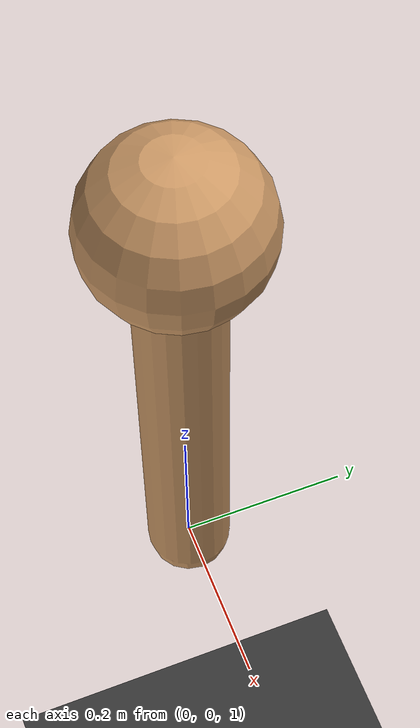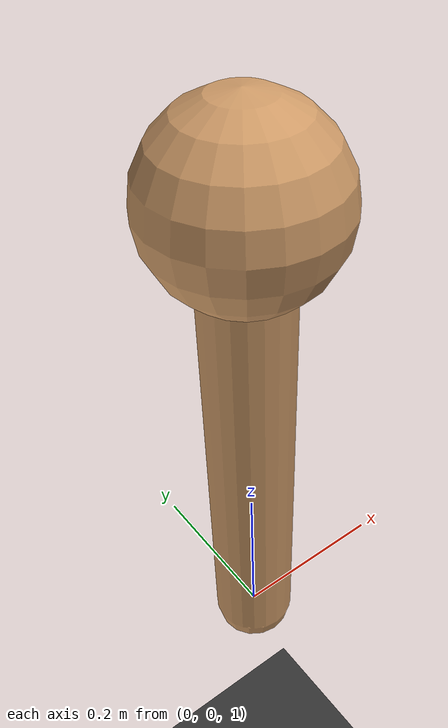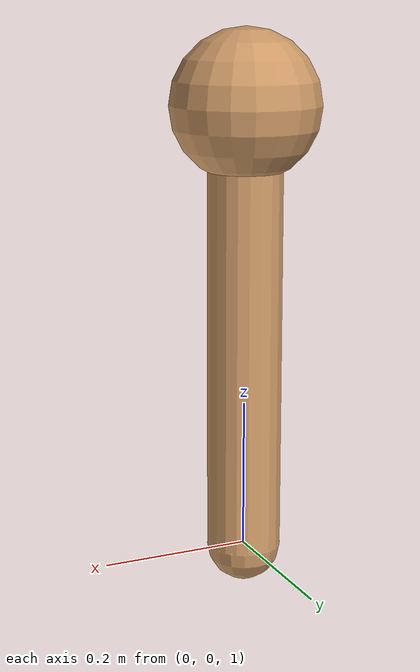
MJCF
<mujoco model="simple_pendulum">
  <compiler angle="radian" autolimits="true"/>

  <option timestep="0.01" integrator="Euler"/>

  <default>
    <joint damping="0.1"/>
    <geom rgba="0.8 0.6 0.4 1"/>
  </default>

  <worldbody>
    <light pos="0 0 3"/>
    <geom type="plane" size="1 1 0.1" rgba="0.2 0.2 0.2 1"/>

    <body name="pole" pos="0 0 1">
      <joint name="hinge" type="hinge" axis="0 1 0"/>
      <geom name="pole" type="capsule" size="0.05" fromto="0 0 0 0 0 0.6"/>
      <geom name="mass" type="sphere" size="0.1" pos="0 0 0.6"/>
    </body>
  </worldbody>

  <actuator>
    <motor name="torque" joint="hinge" gear="1" ctrllimited="true" ctrlrange="-10 10"/>
  </actuator>
</mujoco>
